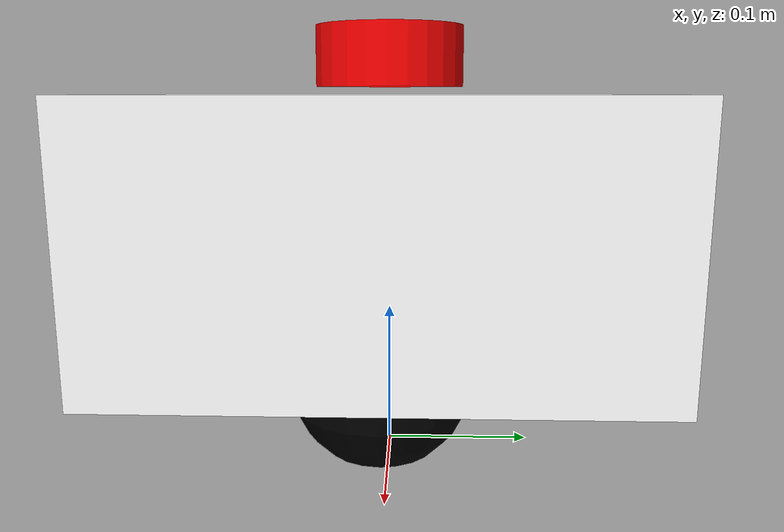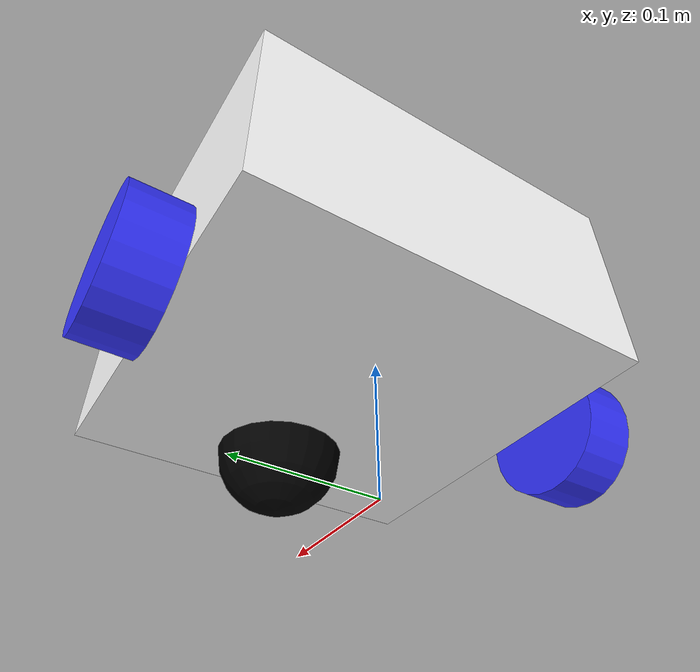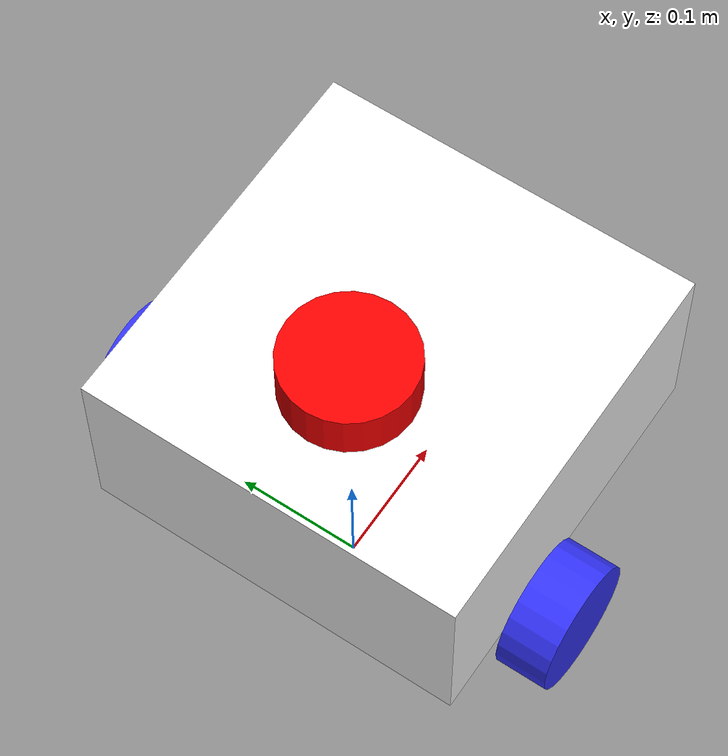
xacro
<?xml version="1.0"?>
<robot xmlns:xacro="http://www.ros.org/wiki/xacro"  name="my_robot">

    <material name="white"><color rgba="1 1 1 1" /></material>
    <material name="blue"><color rgba="0.2 0.2 1 1"/></material>
    <material name="black"><color rgba="0 0 0 1"/></material>
    <material name="red"><color rgba="1 0 0 1"/></material>

    <xacro:macro name="inertial_box" params="mass x y z *origin">
        <inertial>
            <xacro:insert_block name="origin"/>
            <mass value="${mass}" />
            <inertia ixx="${(1/12) * mass * (y*y+z*z)}" ixy="0.0" ixz="0.0"
                    iyy="${(1/12) * mass * (x*x+z*z)}" iyz="0.0"
                    izz="${(1/12) * mass * (x*x+y*y)}" />
        </inertial>
    </xacro:macro>

    <xacro:macro name="inertial_cylinder" params="mass length radius *origin">
        <inertial>
            <xacro:insert_block name="origin"/>
            <mass value="${mass}" />
            <inertia ixx="${(1/12) * mass * (3*radius*radius + length*length)}" ixy="0.0" ixz="0.0"
                    iyy="${(1/12) * mass * (3*radius*radius + length*length)}" iyz="0.0"
                    izz="${(1/2) * mass * (radius*radius)}" />
        </inertial>
    </xacro:macro>

    <xacro:macro name="inertial_sphere" params="mass radius *origin">
        <inertial>
            <xacro:insert_block name="origin"/>
            <mass value="${mass}" />
            <inertia ixx="${(2/5) * mass * (radius*radius)}" ixy="0.0" ixz="0.0"
                    iyy="${(2/5) * mass * (radius*radius)}" iyz="0.0"
                    izz="${(2/5) * mass * (radius*radius)}" />
        </inertial>
    </xacro:macro>

    <link name="base_footprint"/>

    <joint name="base_joint" type="fixed">
        <parent link="base_footprint"/>
        <child link="base_link"/>
        <origin xyz="0 0 0.10"/>
    </joint>

    <link name="base_link"></link>

    <joint name="chassis_joint" type="fixed">
        <parent link="base_link"/>
        <child link="chassis"/>
        <origin xyz="-0.1 0 0"/>
    </joint>

    <link name="chassis">
        <visual>
            <origin xyz="0.15 0 0.075"/>
            <geometry><box size="0.3 0.3 0.15"/></geometry>
            <material name="white"/>
        </visual>
        <collision>
            <origin xyz="0.15 0 0.075"/>
            <geometry><box size="0.3 0.3 0.15"/></geometry>
        </collision>
        <xacro:inertial_box mass="1.0" x="0.3" y="0.3" z="0.15">
            <origin xyz="0.15 0 0.075" rpy="0 0 0"/>
        </xacro:inertial_box>
    </link>

    <joint name="left_wheel_joint" type="continuous">
        <parent link="base_link"/>
        <child link="left_wheel"/>
        <origin xyz="0 0.175 0" rpy="-${pi/2} 0 0"/>
        <axis xyz="0 0 1"/>
    </joint>

    <link name="left_wheel">
        <visual>
            <geometry><cylinder radius="0.05" length="0.04"/></geometry>
            <material name="blue"/>
        </visual>
        <collision>
            <geometry><cylinder radius="0.05" length="0.04"/></geometry>
        </collision>
        <xacro:inertial_cylinder mass="0.2" length="0.04" radius="0.05">
            <origin xyz="0 0 0" rpy="0 0 0"/>
        </xacro:inertial_cylinder>
    </link>

    <joint name="right_wheel_joint" type="continuous">
        <parent link="base_link"/>
        <child link="right_wheel"/>
        <origin xyz="0 -0.175 0" rpy="${pi/2} 0 0"/>
        <axis xyz="0 0 -1"/>
    </joint>

    <link name="right_wheel">
        <visual>
            <geometry><cylinder radius="0.05" length="0.04"/></geometry>
            <material name="blue"/>
        </visual>
        <collision>
            <geometry><cylinder radius="0.05" length="0.04"/></geometry>
        </collision>
        <xacro:inertial_cylinder mass="0.2" length="0.04" radius="0.05">
            <origin xyz="0 0 0" rpy="0 0 0"/>
        </xacro:inertial_cylinder>
    </link>

    <joint name="caster_wheel_joint" type="fixed">
        <parent link="chassis"/>
        <child link="caster_wheel"/>
        <origin xyz="0.24 0 0"/>
    </joint>

    <link name="caster_wheel">
        <visual>
            <geometry><sphere radius="0.05"/></geometry>
            <material name="black"/>
        </visual>
        <collision>
            <geometry><sphere radius="0.05"/></geometry>
        </collision>
        <xacro:inertial_sphere mass="0.1" radius="0.05">
            <origin xyz="0 0 0" rpy="0 0 0"/>
        </xacro:inertial_sphere>
    </link>

    <gazebo reference="caster_wheel">
        <material>Gazebo/Black</material>
        <mu1>0.00001</mu1>
        <mu2>0.00001</mu2>
        <minDepth>0.001</minDepth>
    </gazebo>

    <gazebo reference="left_wheel">
        <material>Gazebo/Blue</material>
        <mu1>1.0</mu1>
        <mu2>1.0</mu2>
        <minDepth>0.001</minDepth>
    </gazebo>

    <gazebo reference="right_wheel">
        <material>Gazebo/Blue</material>
        <mu1>1.0</mu1>
        <mu2>1.0</mu2>
        <minDepth>0.001</minDepth>
    </gazebo>

    <gazebo reference="chassis">
        <material>Gazebo/White</material>
    </gazebo>

    <xacro:include filename="gazebo_control.xacro" />
    <xacro:include filename="lidar.xacro" />

</robot>

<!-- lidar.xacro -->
<robot xmlns:xacro="http://www.ros.org/wiki/xacro">

    <joint name="laser_joint" type="fixed">
        <parent link="chassis"/>
        <child link="laser_frame"/>
        <origin xyz="0.1 0 0.175" rpy="0 0 0"/>
    </joint>

    <link name="laser_frame">
        <visual>
            <geometry>
                <cylinder radius="0.05" length="0.04"/>
            </geometry>
            <material name="red">
                <color rgba="1 0 0 1"/>
            </material>
        </visual>
        <collision>
            <geometry>
                <cylinder radius="0.05" length="0.04"/>
            </geometry>
        </collision>
        <inertial>
            <mass value="0.1"/>
            <inertia ixx="0.0001" ixy="0" ixz="0" iyy="0.0001" iyz="0" izz="0.0001"/>
        </inertial>
    </link>

    <gazebo reference="laser_frame">
        <material>Gazebo/Red</material>

        <sensor name="laser" type="ray">
            <pose> 0 0 0 0 0 0 </pose>
            <visualize>true</visualize> <update_rate>10</update_rate>
            <ray>
                <scan>
                    <horizontal>
                        <samples>360</samples>
                        <min_angle>-3.14</min_angle>
                        <max_angle>3.14</max_angle>
                    </horizontal>
                </scan>
                <range>
                    <min>0.3</min>
                    <max>12</max>
                </range>
            </ray>
            <plugin name="laser_controller" filename="libgazebo_ros_ray_sensor.so">
                <ros>
                    <argument>~/out:=scan</argument>
                </ros>
                <output_type>sensor_msgs/LaserScan</output_type>
                <frame_name>laser_frame</frame_name>
            </plugin>
        </sensor>
    </gazebo>

</robot>
